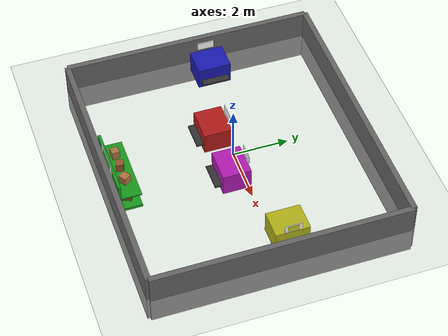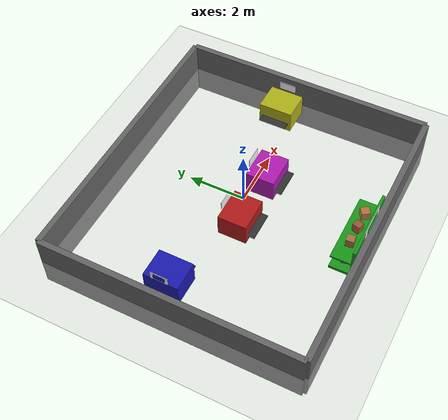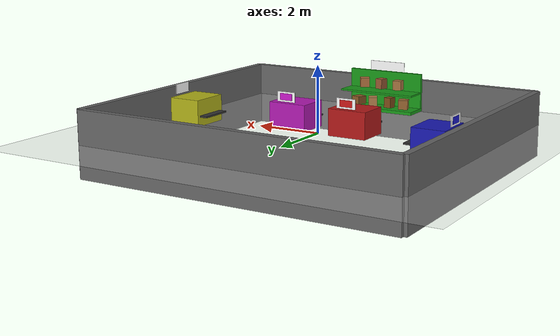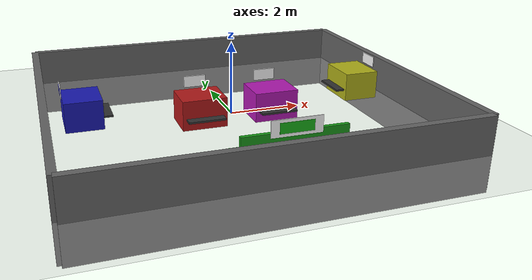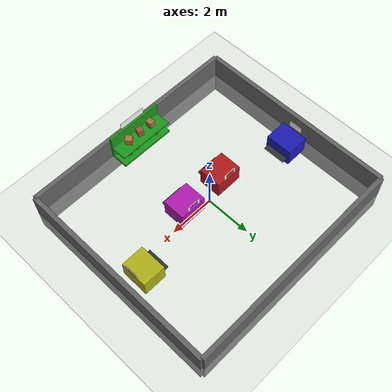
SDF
<?xml version="1.0"?>
<sdf version="1.6" xmlns:ignition="http://ignitionrobotics.org/schema">
  <world name="fms_layout3_realistic">
    <ignition:model_plugin_loading_timeout>120</ignition:model_plugin_loading_timeout>

    <physics type="ode">
      <real_time_update_rate>1000.0</real_time_update_rate>
      <max_step_size>0.001</max_step_size>
      <real_time_factor>1</real_time_factor>
    </physics>

    <include>
      <uri>model://sun</uri>
    </include>

    <include>
      <uri>model://ground_plane</uri>
    </include>

    <!-- ========== LAYOUT 3 (L3) - CIRCULAR ARRANGEMENT ========== -->

    <!-- Load/Unload Station - BOTTOM CENTER, AGAINST WALL -->
    <model name="load_unload_station">
      <static>true</static>
      <pose>0 -4 0 0 0 0</pose>
      <link name="shelf">
        <!-- Shelf frame -->
        <collision name="shelf_collision">
          <geometry>
            <box>
              <size>2.5 0.8 1.2</size>
            </box>
          </geometry>
        </collision>
        <visual name="shelf_back">
          <pose>0 -0.35 0.6 0 0 0</pose>
          <geometry>
            <box>
              <size>2.5 0.1 1.2</size>
            </box>
          </geometry>
          <material>
            <ambient>0.1 0.6 0.1 1</ambient>
            <diffuse>0.1 0.6 0.1 1</diffuse>
          </material>
        </visual>

        <visual name="shelf_bottom">
          <pose>0 0 0.05 0 0 0</pose>
          <geometry>
            <box>
              <size>2.5 0.8 0.1</size>
            </box>
          </geometry>
          <material>
            <ambient>0.1 0.6 0.1 1</ambient>
            <diffuse>0.1 0.6 0.1 1</diffuse>
          </material>
        </visual>

        <visual name="shelf_middle">
          <pose>0 0 0.6 0 0 0</pose>
          <geometry>
            <box>
              <size>2.5 0.8 0.05</size>
            </box>
          </geometry>
          <material>
            <ambient>0.1 0.6 0.1 1</ambient>
            <diffuse>0.1 0.6 0.1 1</diffuse>
          </material>
        </visual>

        <!-- Boxes -->
        <visual name="box1">
          <pose>-0.8 0 0.25 0 0 0.3</pose>
          <geometry>
            <box>
              <size>0.3 0.3 0.3</size>
            </box>
          </geometry>
          <material>
            <ambient>0.6 0.4 0.2 1</ambient>
            <diffuse>0.6 0.4 0.2 1</diffuse>
          </material>
        </visual>

        <visual name="box2">
          <pose>-0.3 0 0.25 0 0 -0.2</pose>
          <geometry>
            <box>
              <size>0.25 0.25 0.35</size>
            </box>
          </geometry>
          <material>
            <ambient>0.5 0.3 0.1 1</ambient>
            <diffuse>0.5 0.3 0.1 1</diffuse>
          </material>
        </visual>

        <visual name="box3">
          <pose>0.3 0 0.25 0 0 0.5</pose>
          <geometry>
            <box>
              <size>0.28 0.28 0.28</size>
            </box>
          </geometry>
          <material>
            <ambient>0.7 0.5 0.3 1</ambient>
            <diffuse>0.7 0.5 0.3 1</diffuse>
          </material>
        </visual>

        <visual name="box4">
          <pose>0.8 0 0.25 0 0 -0.4</pose>
          <geometry>
            <box>
              <size>0.32 0.32 0.25</size>
            </box>
          </geometry>
          <material>
            <ambient>0.55 0.35 0.15 1</ambient>
            <diffuse>0.55 0.35 0.15 1</diffuse>
          </material>
        </visual>

        <visual name="box5">
          <pose>-0.6 0 0.85 0 0 0.1</pose>
          <geometry>
            <box>
              <size>0.27 0.27 0.3</size>
            </box>
          </geometry>
          <material>
            <ambient>0.65 0.45 0.25 1</ambient>
            <diffuse>0.65 0.45 0.25 1</diffuse>
          </material>
        </visual>

        <visual name="box6">
          <pose>0 0 0.85 0 0 -0.3</pose>
          <geometry>
            <box>
              <size>0.26 0.26 0.32</size>
            </box>
          </geometry>
          <material>
            <ambient>0.6 0.35 0.2 1</ambient>
            <diffuse>0.6 0.35 0.2 1</diffuse>
          </material>
        </visual>

        <visual name="box7">
          <pose>0.6 0 0.85 0 0 0.6</pose>
          <geometry>
            <box>
              <size>0.29 0.29 0.29</size>
            </box>
          </geometry>
          <material>
            <ambient>0.7 0.45 0.25 1</ambient>
            <diffuse>0.7 0.45 0.25 1</diffuse>
          </material>
        </visual>

        <!-- L/U Label -->
        <visual name="label_board">
          <pose>0 -0.42 1.3 0 0 0</pose>
          <geometry>
            <box>
              <size>1.2 0.02 0.4</size>
            </box>
          </geometry>
          <material>
            <ambient>1 1 1 1</ambient>
            <diffuse>1 1 1 1</diffuse>
          </material>
        </visual>

        <visual name="label_text">
          <pose>0 -0.43 1.3 0 0 0</pose>
          <geometry>
            <box>
              <size>0.8 0.01 0.25</size>
            </box>
          </geometry>
          <material>
            <ambient>0.1 0.7 0.1 1</ambient>
            <diffuse>0.1 0.7 0.1 1</diffuse>
          </material>
        </visual>
      </link>
    </model>

    <!-- Machine 2 (M2) - LEFT (Blue) - CONVEYOR FACING PATH (RIGHT) -->
    <model name="machine_2">
      <static>true</static>
      <pose>-4 0.5 0 0 0 0</pose>
      <link name="base">
        <collision name="body_collision">
          <geometry>
            <box>
              <size>1.0 1.2 0.8</size>
            </box>
          </geometry>
        </collision>
        <visual name="body_visual">
          <pose>0 0 0.4 0 0 0</pose>
          <geometry>
            <box>
              <size>1.0 1.2 0.8</size>
            </box>
          </geometry>
          <material>
            <ambient>0.1 0.1 0.7 1</ambient>
            <diffuse>0.1 0.1 0.7 1</diffuse>
          </material>
        </visual>

        <!-- Conveyor (FRONT - facing path) -->
        <visual name="conveyor">
          <pose>0.6 0 0.3 0 0 0</pose>
          <geometry>
            <box>
              <size>0.3 1.0 0.05</size>
            </box>
          </geometry>
          <material>
            <ambient>0.2 0.2 0.2 1</ambient>
            <diffuse>0.2 0.2 0.2 1</diffuse>
          </material>
        </visual>

        <visual name="panel">
          <pose>-0.3 0.4 0.6 0 0.3 0</pose>
          <geometry>
            <box>
              <size>0.3 0.2 0.3</size>
            </box>
          </geometry>
          <material>
            <ambient>0.9 0.9 0.9 1</ambient>
            <diffuse>0.9 0.9 0.9 1</diffuse>
          </material>
        </visual>

        <visual name="label_board">
          <pose>-0.52 0 1.0 0 0 0</pose>
          <geometry>
            <box>
              <size>0.02 0.6 0.3</size>
            </box>
          </geometry>
          <material>
            <ambient>1 1 1 1</ambient>
            <diffuse>1 1 1 1</diffuse>
          </material>
        </visual>
        <visual name="label_text">
          <pose>-0.53 0 1.0 0 0 0</pose>
          <geometry>
            <box>
              <size>0.01 0.4 0.2</size>
            </box>
          </geometry>
          <material>
            <ambient>0.1 0.1 0.8 1</ambient>
            <diffuse>0.1 0.1 0.8 1</diffuse>
          </material>
        </visual>
      </link>
    </model>

    <!-- Machine 1 (M1) - CENTER LEFT (Red) - CONVEYOR FACING PATH (DOWN) -->
    <model name="machine_1">
      <static>true</static>
      <pose>-1.0 -0.4 0 0 0 -1.57</pose>
      <link name="base">
        <collision name="body_collision">
          <geometry>
            <box>
              <size>1.0 1.2 0.8</size>
            </box>
          </geometry>
        </collision>
        <visual name="body_visual">
          <pose>0 0 0.4 0 0 0</pose>
          <geometry>
            <box>
              <size>1.0 1.2 0.8</size>
            </box>
          </geometry>
          <material>
            <ambient>0.7 0.1 0.1 1</ambient>
            <diffuse>0.7 0.1 0.1 1</diffuse>
          </material>
        </visual>

        <visual name="conveyor">
          <pose>0.6 0 0.3 0 0 0</pose>
          <geometry>
            <box>
              <size>0.3 1.0 0.05</size>
            </box>
          </geometry>
          <material>
            <ambient>0.2 0.2 0.2 1</ambient>
            <diffuse>0.2 0.2 0.2 1</diffuse>
          </material>
        </visual>

        <visual name="panel">
          <pose>-0.3 0.4 0.6 0 0.3 0</pose>
          <geometry>
            <box>
              <size>0.3 0.2 0.3</size>
            </box>
          </geometry>
          <material>
            <ambient>0.9 0.9 0.9 1</ambient>
            <diffuse>0.9 0.9 0.9 1</diffuse>
          </material>
        </visual>

        <visual name="label_board">
          <pose>-0.52 0 1.0 0 0 0</pose>
          <geometry>
            <box>
              <size>0.02 0.6 0.3</size>
            </box>
          </geometry>
          <material>
            <ambient>1 1 1 1</ambient>
            <diffuse>1 1 1 1</diffuse>
          </material>
        </visual>
        <visual name="label_text">
          <pose>-0.53 0 1.0 0 0 0</pose>
          <geometry>
            <box>
              <size>0.01 0.4 0.2</size>
            </box>
          </geometry>
          <material>
            <ambient>0.8 0.1 0.1 1</ambient>
            <diffuse>0.8 0.1 0.1 1</diffuse>
          </material>
        </visual>
      </link>
    </model>

    <!-- Machine 4 (M4) - CENTER (Magenta) - CONVEYOR FACING PATH (DOWN) -->
    <model name="machine_4">
      <static>true</static>
      <pose>1 -0.4 0 0 0 -1.57</pose>
      <link name="base">
        <collision name="body_collision">
          <geometry>
            <box>
              <size>1.0 1.2 0.8</size>
            </box>
          </geometry>
        </collision>
        <visual name="body_visual">
          <pose>0 0 0.4 0 0 0</pose>
          <geometry>
            <box>
              <size>1.0 1.2 0.8</size>
            </box>
          </geometry>
          <material>
            <ambient>0.7 0.1 0.7 1</ambient>
            <diffuse>0.7 0.1 0.7 1</diffuse>
          </material>
        </visual>

        <visual name="conveyor">
          <pose>0.6 0 0.3 0 0 0</pose>
          <geometry>
            <box>
              <size>0.3 1.0 0.05</size>
            </box>
          </geometry>
          <material>
            <ambient>0.2 0.2 0.2 1</ambient>
            <diffuse>0.2 0.2 0.2 1</diffuse>
          </material>
        </visual>

        <visual name="panel">
          <pose>-0.3 0.4 0.6 0 0.3 0</pose>
          <geometry>
            <box>
              <size>0.3 0.2 0.3</size>
            </box>
          </geometry>
          <material>
            <ambient>0.9 0.9 0.9 1</ambient>
            <diffuse>0.9 0.9 0.9 1</diffuse>
          </material>
        </visual>

        <visual name="label_board">
          <pose>-0.52 0 1.0 0 0 0</pose>
          <geometry>
            <box>
              <size>0.02 0.6 0.3</size>
            </box>
          </geometry>
          <material>
            <ambient>1 1 1 1</ambient>
            <diffuse>1 1 1 1</diffuse>
          </material>
        </visual>
        <visual name="label_text">
          <pose>-0.53 0 1.0 0 0 0</pose>
          <geometry>
            <box>
              <size>0.01 0.4 0.2</size>
            </box>
          </geometry>
          <material>
            <ambient>0.8 0.1 0.8 1</ambient>
            <diffuse>0.8 0.1 0.8 1</diffuse>
          </material>
        </visual>
      </link>
    </model>

    <!-- Machine 3 (M3) - RIGHT (Yellow) - CONVEYOR FACING PATH (LEFT) -->
    <model name="machine_3">
      <static>true</static>
      <pose>4 0.5 0 0 0 3.14</pose>
      <link name="base">
        <collision name="body_collision">
          <geometry>
            <box>
              <size>1.0 1.2 0.8</size>
            </box>
          </geometry>
        </collision>
        <visual name="body_visual">
          <pose>0 0 0.4 0 0 0</pose>
          <geometry>
            <box>
              <size>1.0 1.2 0.8</size>
            </box>
          </geometry>
          <material>
            <ambient>0.7 0.7 0.1 1</ambient>
            <diffuse>0.7 0.7 0.1 1</diffuse>
          </material>
        </visual>

        <visual name="conveyor">
          <pose>0.6 0 0.3 0 0 0</pose>
          <geometry>
            <box>
              <size>0.3 1.0 0.05</size>
            </box>
          </geometry>
          <material>
            <ambient>0.2 0.2 0.2 1</ambient>
            <diffuse>0.2 0.2 0.2 1</diffuse>
          </material>
        </visual>

        <visual name="panel">
          <pose>-0.3 0.4 0.6 0 0.3 0</pose>
          <geometry>
            <box>
              <size>0.3 0.2 0.3</size>
            </box>
          </geometry>
          <material>
            <ambient>0.9 0.9 0.9 1</ambient>
            <diffuse>0.9 0.9 0.9 1</diffuse>
          </material>
        </visual>

        <visual name="label_board">
          <pose>-0.52 0 1.0 0 0 0</pose>
          <geometry>
            <box>
              <size>0.02 0.6 0.3</size>
            </box>
          </geometry>
          <material>
            <ambient>1 1 1 1</ambient>
            <diffuse>1 1 1 1</diffuse>
          </material>
        </visual>
        <visual name="label_text">
          <pose>-0.53 0 1.0 0 0 0</pose>
          <geometry>
            <box>
              <size>0.01 0.4 0.2</size>
            </box>
          </geometry>
          <material>
            <ambient>0.8 0.8 0.1 1</ambient>
            <diffuse>0.8 0.8 0.1 1</diffuse>
          </material>
        </visual>
      </link>
    </model>

    <!-- Floor marking - Circulation path matching diagram -->

    <!-- Boundary walls -->
    <model name="wall_north">
      <static>true</static>
      <pose>0 4.5 0 0 0 0</pose>
      <link name="link">
        <collision name="collision">
          <geometry>
            <box>
              <size>10 0.2 2.0</size>
            </box>
          </geometry>
        </collision>
        <visual name="visual">
          <geometry>
            <box>
              <size>10 0.2 2.0</size>
            </box>
          </geometry>
          <material>
            <ambient>0.4 0.4 0.4 1</ambient>
            <diffuse>0.4 0.4 0.4 1</diffuse>
          </material>
        </visual>
      </link>
    </model>

    <model name="wall_south">
      <static>true</static>
      <pose>0 -4.5 0 0 0 0</pose>
      <link name="link">
        <collision name="collision">
          <geometry>
            <box>
              <size>10 0.2 2.0</size>
            </box>
          </geometry>
        </collision>
        <visual name="visual">
          <geometry>
            <box>
              <size>10 0.2 2.0</size>
            </box>
          </geometry>
          <material>
            <ambient>0.4 0.4 0.4 1</ambient>
            <diffuse>0.4 0.4 0.4 1</diffuse>
          </material>
        </visual>
      </link>
    </model>

    <model name="wall_east">
      <static>true</static>
      <pose>5 0 0 0 0 0</pose>
      <link name="link">
        <collision name="collision">
          <geometry>
            <box>
              <size>0.2 9 2.0</size>
            </box>
          </geometry>
        </collision>
        <visual name="visual">
          <geometry>
            <box>
              <size>0.2 9 2.0</size>
            </box>
          </geometry>
          <material>
            <ambient>0.4 0.4 0.4 1</ambient>
            <diffuse>0.4 0.4 0.4 1</diffuse>
          </material>
        </visual>
      </link>
    </model>

    <model name="wall_west">
      <static>true</static>
      <pose>-5 0 0 0 0 0</pose>
      <link name="link">
        <collision name="collision">
          <geometry>
            <box>
              <size>0.2 9 2.0</size>
            </box>
          </geometry>
        </collision>
        <visual name="visual">
          <geometry>
            <box>
              <size>0.2 9 2.0</size>
            </box>
          </geometry>
          <material>
            <ambient>0.4 0.4 0.4 1</ambient>
            <diffuse>0.4 0.4 0.4 1</diffuse>
          </material>
        </visual>
      </link>
    </model>

    <scene>
      <ambient>0.6 0.6 0.6 1</ambient>
      <background>0.7 0.7 0.7 1</background>
      <shadows>true</shadows>
    </scene>

    <gui fullscreen='0'>
      <camera name='user_camera'>
        <pose>0 -8 10 0 0.7 1.57</pose>
      </camera>
    </gui>

  </world>
</sdf>
